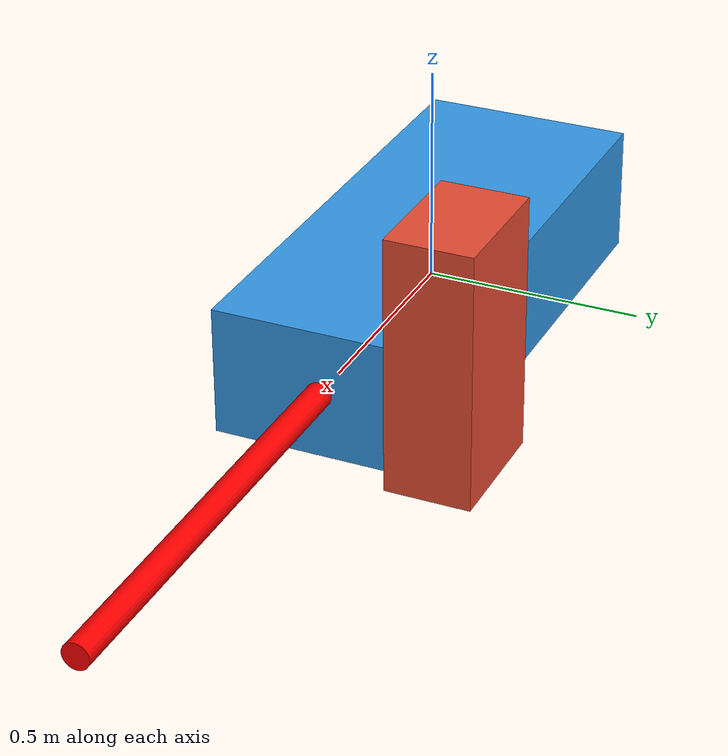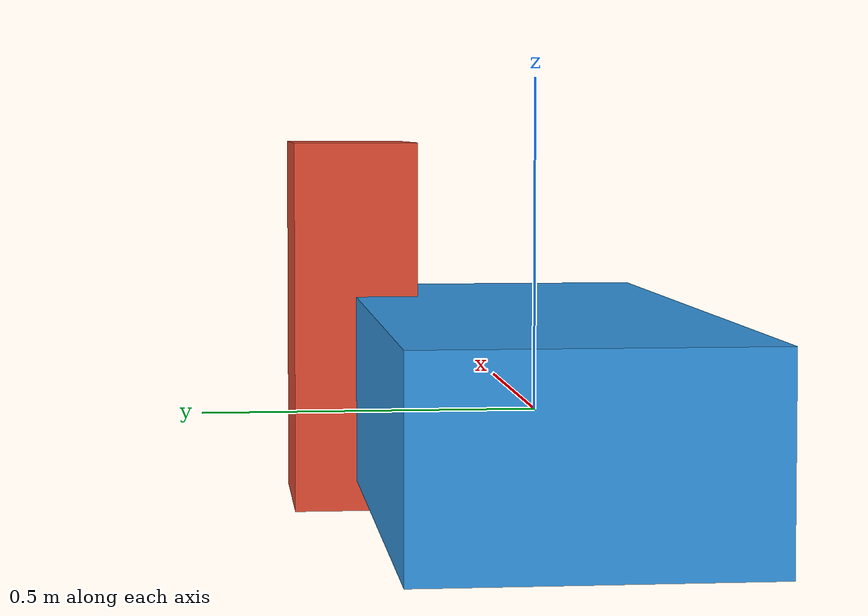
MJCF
<mujoco model="asymmetric_body">

    <option gravity="0 0 0"/>

    <worldbody>

        <body name="asymmetric_body" pos="0 0 0">

            <!-- Main rectangular body -->
            <geom
                type="box"
                size="0.6 0.25 0.15"
                rgba="0.2 0.6 0.9 1"/>

            <!-- Asymmetric extension -->
            <geom
                type="box"
                pos="0.45 0.25 0.1"
                size="0.15 0.1 0.3"
                rgba="0.9 0.3 0.2 1"/>

            <!-- X axis marker -->
            <geom
                type="cylinder"
                pos="0.8 0 0"
                size="0.03 0.8"
                quat="0 0.707 0 0.707"
                rgba="1 0 0 1"/>

        </body>

    </worldbody>

</mujoco>
